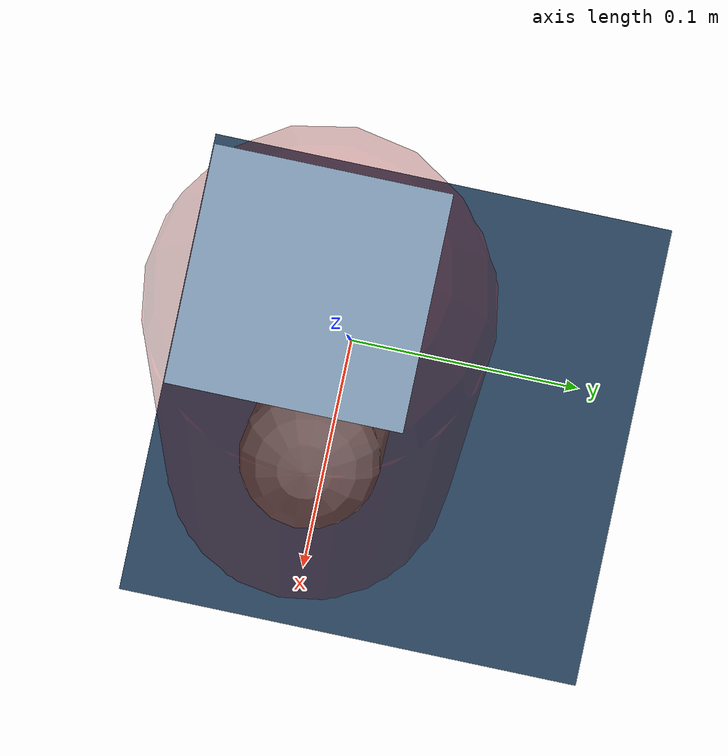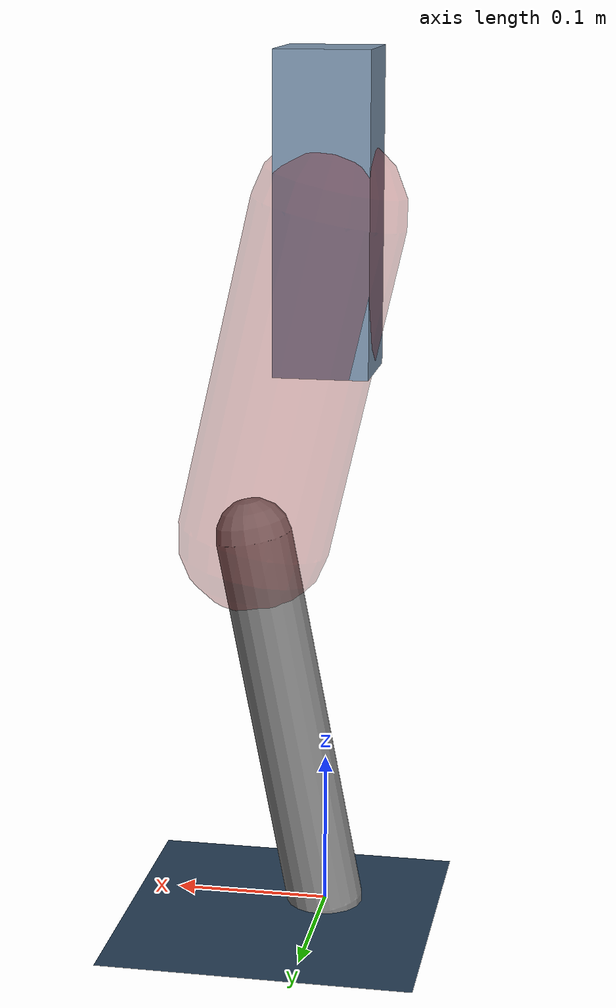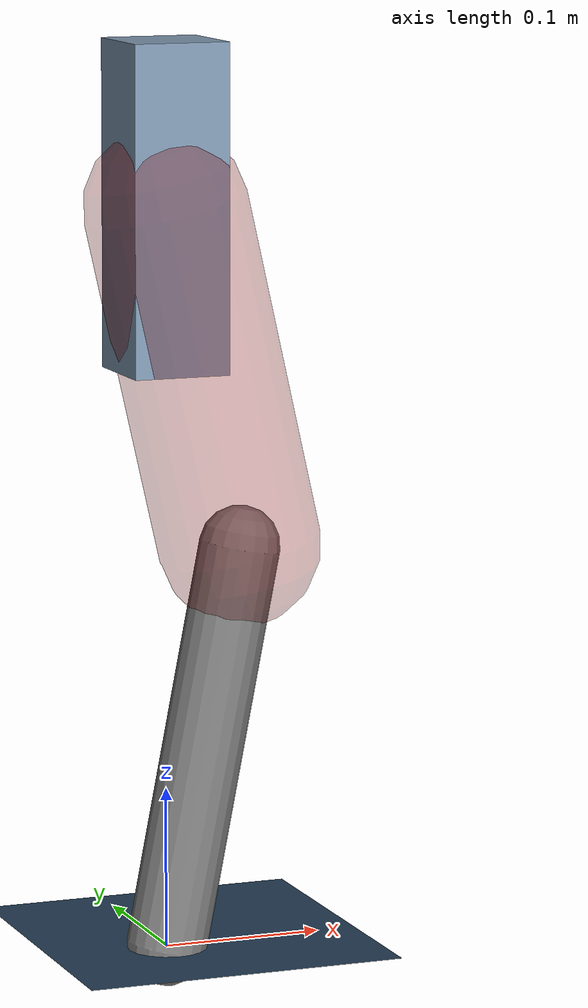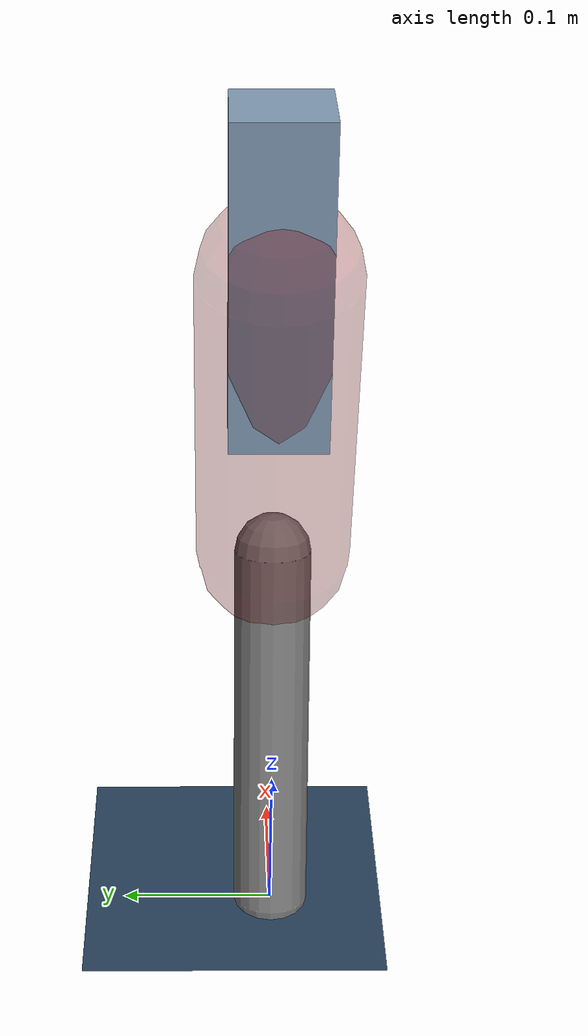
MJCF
<mujoco model="Hopper2D">
	<compiler inertiafromgeom="true" angle="radian" />
	<option timestep="0.001" integrator="implicit" cone="elliptic" solver="Newton" tolerance="1e-10" />

	<default>
		<geom contype="1" conaffinity="1" condim="3" friction="2 0.005 0.0001" solref="0.005 1" />
		<joint limited="true" damping="0.1" />
	</default>

	<asset>
		<texture name="skybox" type="skybox" builtin="gradient" rgb1=".4 .6 .8" rgb2="0 0 0" width="800" height="800" />
		<texture name="grid" type="2d" builtin="checker" rgb1=".1 .2 .3" rgb2=".2 .3 .4" width="300" height="300" mark="edge" markrgb=".2 .3 .4" />
		<material name="ground" texture="grid" texrepeat="1 1" texuniform="true" reflectance="0.1" />
		<material name="leg" rgba="0.5 0.6 0.7 1" />
	</asset>

	<worldbody>

		<geom name="floor" type="plane" size="5 5 0.25" material="ground" />

		<light directional="false" diffuse="0.8 0.8 0.8" specular="0.3 0.3 0.3" pos="0 0 2" dir="0 0 -1" />
		<light mode="targetbodycom" target="base" directional="false" diffuse="0.8 0.8 0.8" specular="0.3 0.3 0.3" pos="0 0 2" dir="0 0 -1" />

		<camera name="fixed" pos="0 -2 1" xyaxes="1 0 0 0 0 1" />
		<camera name="tracking" mode="trackcom" pos="0 -3 1" />

		<body name="root" pos="0 0 0.4591989784247342">
			<joint name="slide_x" type="slide" axis="1 0 0" range="-100 100" />
			<joint name="slide_z" type="slide" axis="0 0 1" range="0 10" />

			<body name="base" pos="0 0 0">
				<geom name="torso" type="box" size="0.03 0.03 0.1" mass="3.668" material="leg" />

				<body name="link1" pos="0 0 0" euler="0 1.3464122553485443 0">
					<joint type="hinge" axis="0 -1 0" pos="0 0 0" name="hinge1" limited="true" range="-3.14 3.14" stiffness="0" damping="0.1" />
					<geom name="thigh" type="capsule" fromto="0 0 0 0.21579104652246178 0 0" size="0.05" rgba="0.5 0 0 0.3" mass="0.7690776163061545" />

					<body name="link2" pos="0.21579104652246178 0 0" euler="0 0.41501277742385656 0">
						<joint type="hinge" axis="0 -1 0" pos="0 0 0" name="hinge2" limited="true" range="-3.14 3.14" stiffness="0" damping="0.1" />
						<geom name="shank" type="capsule" fromto="0 0 0 0.25340793190227245 0 0" size="0.025" mass="0.44532634552181793" />

					</body>
				</body>
			</body>
		</body>
	</worldbody>

	<actuator>
		<motor name="torque1" joint="hinge1" ctrlrange="-164.54018943489646 164.54018943489646" ctrllimited="true" gear="1" />
		<motor name="torque2" joint="hinge2" ctrlrange="-109.5621830477744 109.5621830477744" ctrllimited="true" gear="1" />
	</actuator>
</mujoco>
